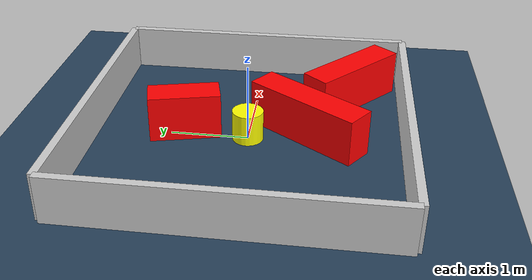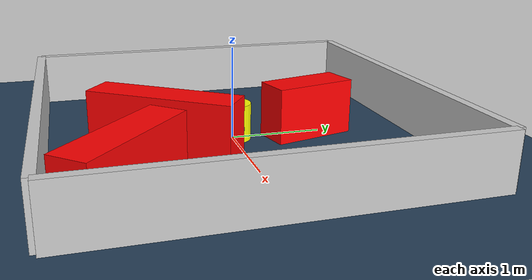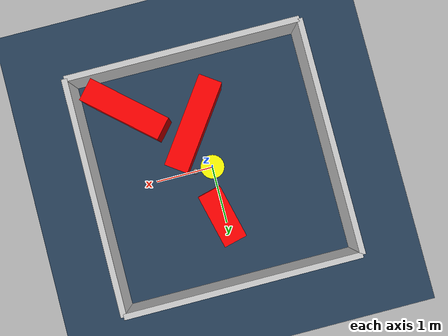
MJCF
<?xml version="1.0" ?>
<mujoco model="generated_environment">
  <option timestep="0.01" integrator="RK4" cone="elliptic"/>
  <default>
    <geom density="1"/>
  </default>
  <asset>
    <texture builtin="gradient" height="3072" rgb1="0.3 0.5 0.7" rgb2="0 0 0" type="skybox" width="512"/>
    <texture builtin="checker" height="300" mark="edge" markrgb="0.8 0.8 0.8" name="groundplane" rgb1="0.2 0.3 0.4" rgb2="0.1 0.2 0.3" type="2d" width="300"/>
    <material name="groundplane" reflectance="0.2" texrepeat="5 5" texture="groundplane" texuniform="true"/>
    <material name="robot" rgba="0.0 1.0 0.0 1"/>
  </asset>
  <worldbody>
    <light dir="0 0 -1" directional="true" pos="0 0 1.5"/>
    <geom condim="4" friction="1.0 0.005 0.001" material="groundplane" name="floor" size="0 0 0.05" type="plane"/>
    <body name="walls">
      <geom name="wall_1" condim="4" pos="-2.0 0.0 0.3" rgba="0.800000011920929 0.800000011920929 0.800000011920929 1.0" size="0.05 2.0 0.3" type="box"/>
      <geom name="wall_2" condim="4" pos="2.0 0.0 0.3" rgba="0.800000011920929 0.800000011920929 0.800000011920929 1.0" size="0.05 2.0 0.3" type="box"/>
      <geom name="wall_3" condim="4" pos="0.0 -2.0 0.3" rgba="0.800000011920929 0.800000011920929 0.800000011920929 1.0" size="2.0 0.05 0.3" type="box"/>
      <geom name="wall_4" condim="4" pos="0.0 2.0 0.3" rgba="0.800000011920929 0.800000011920929 0.800000011920929 1.0" size="2.0 0.05 0.3" type="box"/>
    </body>
    <body name="robot">
      <joint name="joint_x" type="slide" pos="0 0 0" axis="1 0 0"/>
      <joint name="joint_y" type="slide" pos="0 0 0" axis="0 1 0"/>
      <geom name="robot" type="sphere" pos="0.3 0.0 0.2" size="0.05" mass="5." friction="1.0 0.005 0.0001" condim="4" rgba="0.5 0.5 0.5 1.0"/>
      <site name="sensor_ball"/>
    </body>
    <body name="obstacle_movable_1">
      <geom name="obstacle_movable_1" condim="4" pos="0.0 0.0 0.2" euler="0 0 0.0" friction="1.0 0.005 0.001" rgba="1.0 1.0 0.0 1.0" size="0.2 0.2 0.0" type="cylinder" mass="0.1"/>
      <joint type="free"/>
    </body>
    <body name="obstacle_2_static">
      <geom name="obstacle_2_static" condim="4" pos="1.1684427066920813 -1.2780642961482214 0.3" euler="0 0 318.48049586050956" friction="1.0 0.005 0.001" rgba="1 0 0 1" size="0.7193381342085898 0.2 0.3" type="box"/>
    </body>
    <body name="obstacle_3_static">
      <geom name="obstacle_3_static" condim="4" pos="0.13030563031810072 -0.7588658915873379 0.3" euler="0 0 234.69814291997108" friction="1.0 0.005 0.001" rgba="1 0 0 1" size="0.7981710832591642 0.2 0.3" type="box"/>
    </body>
    <body name="obstacle_4_static">
      <geom name="obstacle_4_static" condim="4" pos="0.05020248383545933 0.8303053319477713 0.3" euler="0 0 103.80689000625378" friction="1.0 0.005 0.001" rgba="1 0 0 1" size="0.458849617490083 0.2 0.3" type="box"/>
    </body>
  </worldbody>
  <actuator>
    <motor name="actuator_x" joint="joint_x" gear="1" ctrlrange="-1 1"/>
    <motor name="actuator_y" joint="joint_y" gear="1" ctrlrange="-1 1"/>
  </actuator>
</mujoco>
